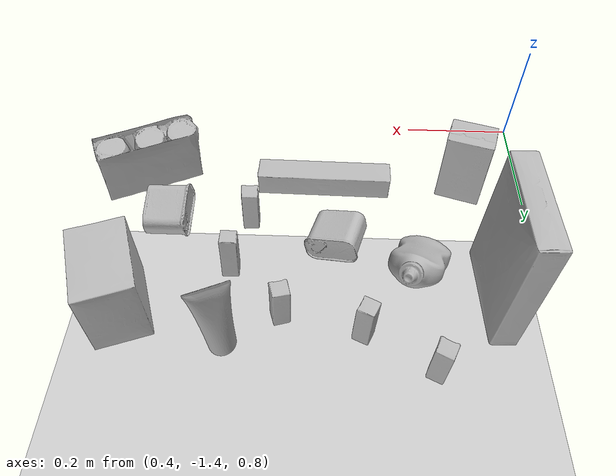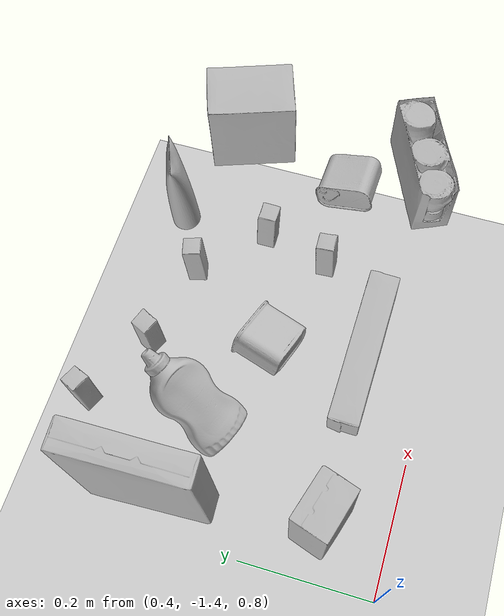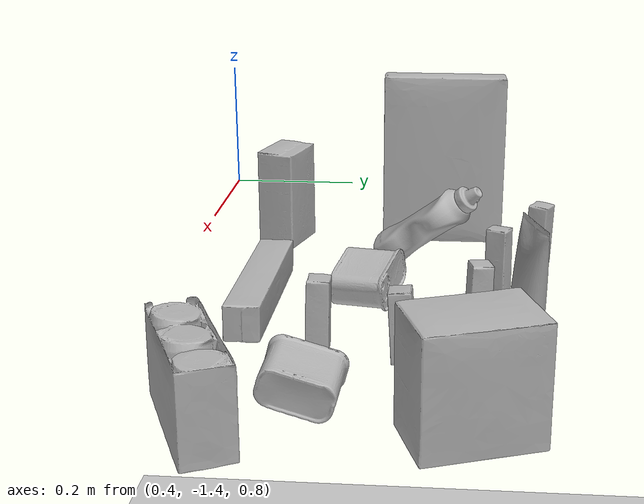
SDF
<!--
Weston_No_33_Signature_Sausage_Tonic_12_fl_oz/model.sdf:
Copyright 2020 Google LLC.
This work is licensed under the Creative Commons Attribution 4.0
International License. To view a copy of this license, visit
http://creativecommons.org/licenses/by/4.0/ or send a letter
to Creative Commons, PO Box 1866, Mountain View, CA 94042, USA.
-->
<sdf version="1.10">
 <world name="empty">
  <physics name="1ms" type="ignored">
   <max_step_size>0.001</max_step_size>
   <real_time_factor>1</real_time_factor>
   <real_time_update_rate>1000</real_time_update_rate>
  </physics>
  <plugin name="gz::sim::systems::Physics" filename="gz-sim-physics-system"/>
  <plugin name="gz::sim::systems::UserCommands" filename="gz-sim-user-commands-system"/>
  <plugin name="gz::sim::systems::SceneBroadcaster" filename="gz-sim-scene-broadcaster-system"/>
  <plugin name="gz::sim::systems::Contact" filename="gz-sim-contact-system"/>
  <gravity>0 0 -9.8000000000000007</gravity>
  <magnetic_field>5.5644999999999998e-06 2.2875799999999999e-05 -4.2388400000000002e-05</magnetic_field>
  <atmosphere type="adiabatic"/>
  <scene>
   <ambient>0.400000006 0.400000006 0.400000006 1</ambient>
   <background>0.699999988 0.699999988 0.699999988 1</background>
   <shadows>true</shadows>
  </scene>
  <model name="ground_plane">
   <static>true</static>
   <link name="link">
    <collision name="collision">
     <geometry><plane><normal>0 0 1</normal><size>100 100</size></plane></geometry>
    </collision>
    <visual name="visual">
     <geometry><plane><normal>0 0 1</normal><size>100 100</size></plane></geometry>
     <material>
      <ambient>0.800000012 0.800000012 0.800000012 1</ambient>
      <diffuse>0.800000012 0.800000012 0.800000012 1</diffuse>
      <specular>0.800000012 0.800000012 0.800000012 1</specular>
     </material>
    </visual>
    <inertial>
     <mass>1</mass>
     <inertia><ixx>1</ixx><ixy>0</ixy><ixz>0</ixz><iyy>1</iyy><iyz>0</iyz><izz>1</izz></inertia>
    </inertial>
   </link>
  </model>
  <include>
   <uri>file:///home/surabhi/UR10e-3D-Vision-Guided-Bin-Picking/src/gazebo/models/Weston_No_33_Signature_Sausage_Tonic_12_fl_oz</uri>
   <name>weston_no_33</name>
   <pose>0.94896199999999997 -1.0813699999999999 0.72610200000000003 0.017293599999999937 -0.029874100000000046 0.0052138000000000097</pose>
  </include>
  <include>
   <uri>file:///home/surabhi/UR10e-3D-Vision-Guided-Bin-Picking/src/gazebo/models/PottedMeatCan</uri>
   <name>potted_meat_can_0</name>
   <pose>1.1201310753535916 -1.168747876870887 0.72767496889799665 -1.5182258674087061 0.21762945503082148 1.5449137025588042</pose>
  </include>
  <include>
   <uri>file:///home/surabhi/UR10e-3D-Vision-Guided-Bin-Picking/src/gazebo/models/PottedMeatCan</uri>
   <name>potted_meat_can</name>
   <pose>0.76589207381968216 -1.1861331982128076 0.72767396836982934 -1.5182257809923481 0.21762944651112795 -0.27906504398211729</pose>
  </include>
  <include>
   <uri>file:///home/surabhi/UR10e-3D-Vision-Guided-Bin-Picking/src/gazebo/models/MustardBottle</uri>
   <name>mustard_bottle</name>
   <pose>0.59299199999999996 -1.1065700000000001 0.72670100000000004 -0.85999899999999962 0.34638799999999997 -0.10850700000000002</pose>
  </include>
  <include>
   <uri>file:///home/surabhi/UR10e-3D-Vision-Guided-Bin-Picking/src/gazebo/models/YumYum_D3_Liquid</uri>
   <name>yumyum_d3_liquid</name>
   <pose>0.84850000000000003 -0.981989 0.72674000000000005 -0.0063153100000000123 -0.0046516300000000029 -2.8784200000000006</pose>
  </include>
  <include>
   <uri>file:///home/surabhi/UR10e-3D-Vision-Guided-Bin-Picking/src/gazebo/models/Wilton_PreCut_Parchment_Sheets_10_x_15_24_sheets</uri>
   <name>wilton_precut_parchment</name>
   <pose>0.77714799999999995 -1.29634 0.72487999999999997 -0.0027906800000000015 0.014548300000000007 3.124359999999998</pose>
  </include>
  <include>
   <uri>file:///home/surabhi/UR10e-3D-Vision-Guided-Bin-Picking/src/gazebo/models/Wilton_Pearlized_Sugar_Sprinkles_525_oz_Gold</uri>
   <name>wilton_pearlized_sugar</name>
   <pose>0.91903950639874943 -1.1932496273494786 0.72679615339633474 -0.0067553540261396892 0.0049257063473669566 -3.0988371276098783</pose>
  </include>
  <include>
   <uri>file:///home/surabhi/UR10e-3D-Vision-Guided-Bin-Picking/src/gazebo/models/Whey_Protein_Vanilla_12_Packets</uri>
   <name>whey_protein_vanilla</name>
   <pose>1.14008 -0.99378500000000003 0.72656699999999996 -0.0028023400000000026 -0.0055167400000000009 -2.7937199999999991</pose>
  </include>
  <include>
   <uri>file:///home/surabhi/UR10e-3D-Vision-Guided-Bin-Picking/src/gazebo/models/Nescafe_Momento_Mocha_Specialty_Coffee_Mix_8_ct</uri>
   <name>nescafe_momento</name>
   <pose>0.49492799999999998 -1.3006800000000001 0.72657000000000005 -0.0030983199999999999 -0.0070154199999999927 -0.30740099999999942</pose>
  </include>
  <include>
   <uri>file:///home/surabhi/UR10e-3D-Vision-Guided-Bin-Picking/src/gazebo/models/Orbit_Bubblemint_Mini_Bottle_6_ct</uri>
   <name>orbit_bubblemint</name>
   <pose>1.13558 -1.31409 0.72648000000000001 0.0014273100000000011 -0.0037963700000000098 0.42945600000000056</pose>
  </include>
  <include>
   <uri>file:///home/surabhi/UR10e-3D-Vision-Guided-Bin-Picking/src/gazebo/models/Nestle_Nesquik_Chocolate_Powder_Flavored_Milk_Additive_109_Oz_Canister</uri>
   <name>nestle_nesquick</name>
   <pose>0.70176400000000005 -0.95255000000000001 0.72663299999999997 -0.0043575299999999992 -0.00077532400000000204 -2.0057800000000015</pose>
  </include>
  <include>
   <uri>file:///home/surabhi/UR10e-3D-Vision-Guided-Bin-Picking/src/gazebo/models/Vans_Cereal_Honey_Nut_Crunch_11_oz_box</uri>
   <name>vans_cereal</name>
   <pose>0.465364 -1.0387500000000001 0.72626900000000005 -0.0040480299999999985 -0.0082300600000000043 1.5956700000000006</pose>
  </include>
  <include>
   <uri>file:///home/surabhi/UR10e-3D-Vision-Guided-Bin-Picking/src/gazebo/models/Marc_Anthony_True_Professional_Strictly_Curls_Curl_Defining_Lotion</uri>
   <name>marc_anthony_strictly_curls</name>
   <pose>0.94857698678970315 -0.92697900533676159 0.72631698846817017 0.0067585963811790835 -0.040692320984543284 -2.0415162843934889</pose>
  </include>
  <include>
   <uri>file:///home/surabhi/UR10e-3D-Vision-Guided-Bin-Picking/src/gazebo/models/Twinlab_Nitric_Fuel</uri>
   <name>twinlab_nitric_fuel</name>
   <pose>0.58199501037597656 -0.88497799634933483 0.72663199901580811 0.00016399200387829003 0.0082861103929021702 2.6939387690907721</pose>
  </include>
  <light name="sun" type="directional">
   <pose>0 0 10 0 0 0</pose>
   <intensity>1</intensity>
   <direction>-0.5 0.10000000000000001 -0.90000000000000002</direction>
   <diffuse>0.800000012 0.800000012 0.800000012 1</diffuse>
   <specular>0.200000003 0.200000003 0.200000003 1</specular>
   <attenuation>
    <range>1000</range>
    <linear>0.0099999997764825821</linear>
    <constant>0.89999997615814209</constant>
    <quadratic>0.0010000000474974513</quadratic>
   </attenuation>
   <spot><inner_angle>0</inner_angle><outer_angle>0</outer_angle><falloff>0</falloff></spot>
  </light>
 </world>
</sdf>

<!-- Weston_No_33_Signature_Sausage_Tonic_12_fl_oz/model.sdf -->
<sdf version="1.6">

  <model name='Weston_No_33_Signature_Sausage_Tonic_12_fl_oz'>
      <link name='link_0'>
        <visual name='visual'>
          <geometry>
            <mesh>
              <uri>meshes/model.obj</uri>
            </mesh>
          </geometry>
        </visual>
        <collision name='collision_0'>
          <geometry>
            <mesh>
              <uri>meshes/model.obj</uri>
            </mesh>
          </geometry>
        </collision>
        <pose>0 0 0 0 0 0</pose>
        <inertial>
          <pose>0 0 0 0 0 0</pose>
          <mass>1</mass>
          <inertia>
            <ixx>1</ixx>
            <ixy>0</ixy>
            <ixz>0</ixz>
            <iyy>1</iyy>
            <iyz>0</iyz>
            <izz>1</izz>
          </inertia>
        </inertial>
        <enable_wind>false</enable_wind>
      </link>
      <static>false</static>
      <self_collide>false</self_collide>
    </model>

</sdf>

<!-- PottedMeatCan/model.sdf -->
<!--
This SDF file was automatically generated using a template modified
and authored by Adwait Naik. The moment of interia is not supposed to be changed.
-->
<sdf version="1.7">
    <model name="potted_meat_can">
      <pose>1.0 2.0 2.0 0 0 0</pose>
      <link name="link">
        <inertial>
          <inertia>
           <ixx>4.287366513749583e-07</ixx>
           <ixy>-2.020309373055796e-23</ixy>
           <ixz>-4.823406226388371e-24</ixz>
           <iyy>3.228086963634995e-07</iyy>
           <iyz>-5.302497140952807e-25</iyz>
           <izz>2.4925393166117206e-07</izz>
          </inertia>
          <mass>0.0003541315255998319</mass>
        </inertial>
        <collision name="collision">
          <geometry>
          	<mesh>
             <uri>textured.dae</uri>
            </mesh>
          </geometry>
        </collision>

        <visual name="visual">
          <geometry>
          	<mesh>
            <uri>textured.dae</uri>
	        </mesh>
          </geometry>
        </visual>
      </link>
    </model>
</sdf>

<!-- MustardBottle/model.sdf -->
<sdf version="1.7">
<!--
This SDF file was automatically generated using a template modified
and authored by Adwait Naik. The moment of interia is not supposed to be changed.
-->
    <model name="mustard_bottle">
      <pose>1.0 2.0 3.0 -1.0 0 0</pose>
      <link name="link">
        <inertial>
          <inertia>
           <ixx>1.6697164243557222e-06</ixx>
           <ixy>-7.608043365683558e-23</ixy>
           <ixz>-8.85497422500391e-24</ixz>
           <iyy>1.454996005383364e-06</iyy>
           <iyz>5.1836699346339805e-24</iyz>
           <izz>4.2928863786736384e-07</izz>
          </inertia>
          <mass>0.6120391571167176</mass>
        </inertial>
        <collision name="collision">
          <geometry>
          	<mesh>
             <uri>textured.dae</uri>
            </mesh>
          </geometry>
          <surface>
            <friction>
                <bullet>
                 <friction>0.3</friction>
                  <friction2>0.3</friction2>
                  <rolling_friction>0.02</rolling_friction>
                </bullet>
            </friction>
            <contact>
              <bullet>
                <soft_cfm>0.00001</soft_cfm>
                <soft_erp>0.05</soft_erp>
                <kp>1e3</kp>
                <kd>50</kd>
              </bullet>
            </contact>
          </surface>
        </collision>

        <visual name="visual">
          <geometry>
          	<mesh>
            <uri>textured.dae</uri>
	        </mesh>
          </geometry>
        </visual>
      </link>
    </model>
</sdf>

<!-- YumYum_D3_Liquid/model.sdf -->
<sdf version="1.6">
   <model name='YumYum_D3_Liquid'>
      <link name='link_0'>
        <visual name='visual'>
          <geometry>
            <mesh>
              <uri>meshes/model.obj</uri>
            </mesh>
          </geometry>
        </visual>
        <collision name='collision_0'>
          <geometry>
            <mesh>
              <uri>meshes/model.obj</uri>
            </mesh>
          </geometry>
        </collision>
        <pose>0 0 0 0 0 0</pose>
        <inertial>
          <pose>0 0 0 0 0 0</pose>
          <mass>1</mass>
          <inertia>
            <ixx>1</ixx>
            <ixy>0</ixy>
            <ixz>0</ixz>
            <iyy>1</iyy>
            <iyz>0</iyz>
            <izz>1</izz>
          </inertia>
        </inertial>
        <enable_wind>false</enable_wind>
      </link>
      <static>false</static>
      <self_collide>false</self_collide>
    </model>
</sdf>

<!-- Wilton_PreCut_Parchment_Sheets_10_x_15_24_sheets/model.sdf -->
<sdf version="1.6">
   <model name='Wilton_PreCut_Parchment_Sheets_10_x_15_24_sheets'>
      <link name='link_0'>
        <visual name='visual'>
          <geometry>
            <mesh>
              <uri>meshes/model.obj</uri>
            </mesh>
          </geometry>
        </visual>
        <collision name='collision_0'>
          <geometry>
            <mesh>
              <uri>meshes/model.obj</uri>
            </mesh>
          </geometry>
        </collision>
        <pose>0 0 0 0 0 0</pose>
        <inertial>
          <pose>0 0 0 0 0 0</pose>
          <mass>1</mass>
          <inertia>
            <ixx>1</ixx>
            <ixy>0</ixy>
            <ixz>0</ixz>
            <iyy>1</iyy>
            <iyz>0</iyz>
            <izz>1</izz>
          </inertia>
        </inertial>
        <enable_wind>false</enable_wind>
      </link>
      <static>false</static>
      <self_collide>false</self_collide>
    </model>
</sdf>

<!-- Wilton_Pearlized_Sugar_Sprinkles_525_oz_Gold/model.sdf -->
<sdf version="1.6">
  <model name='Wilton_Pearlized_Sugar_Sprinkles_525_oz_Gold'>
      <link name='link_0'>
        <visual name='visual'>
          <geometry>
            <mesh>
              <uri>meshes/model.obj</uri>
            </mesh>
          </geometry>
        </visual>
        <collision name='collision_0'>
          <geometry>
            <mesh>
              <uri>meshes/model.obj</uri>
            </mesh>
          </geometry>
        </collision>
        <pose>0 0 0 0 0 0</pose>
        <inertial>
          <pose>0 0 0 0 0 0</pose>
          <mass>1</mass>
          <inertia>
            <ixx>1</ixx>
            <ixy>0</ixy>
            <ixz>0</ixz>
            <iyy>1</iyy>
            <iyz>0</iyz>
            <izz>1</izz>
          </inertia>
        </inertial>
        <enable_wind>false</enable_wind>
      </link>
      <static>false</static>
      <self_collide>false</self_collide>
    </model>
</sdf>

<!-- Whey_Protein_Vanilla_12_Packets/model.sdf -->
<sdf version="1.6">
  <model name='Whey_Protein_Vanilla_12_Packets'>
      <link name='link_0'>
        <visual name='visual'>
          <geometry>
            <mesh>
              <uri>meshes/model.obj</uri>
            </mesh>
          </geometry>
        </visual>
        <collision name='collision_0'>
          <geometry>
            <mesh>
              <uri>meshes/model.obj</uri>
            </mesh>
          </geometry>
        </collision>
        <pose>0 0 0 0 0 0</pose>
        <inertial>
          <pose>0 0 0 0 0 0</pose>
          <mass>1</mass>
          <inertia>
            <ixx>1</ixx>
            <ixy>0</ixy>
            <ixz>0</ixz>
            <iyy>1</iyy>
            <iyz>0</iyz>
            <izz>1</izz>
          </inertia>
        </inertial>
        <enable_wind>false</enable_wind>
      </link>
      <static>false</static>
      <self_collide>false</self_collide>
    </model>
</sdf>

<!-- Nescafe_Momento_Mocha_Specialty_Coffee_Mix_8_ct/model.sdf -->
<sdf version="1.6">
  <model name='Nescafe_Momento_Mocha_Specialty_Coffee_Mix_8_ct'>
      <link name='link_0'>
        <visual name='visual'>
          <geometry>
            <mesh>
              <uri>meshes/model.obj</uri>
            </mesh>
          </geometry>
        </visual>
        <collision name='collision_0'>
          <geometry>
            <mesh>
              <uri>meshes/model.obj</uri>
            </mesh>
          </geometry>
        </collision>
        <pose>0 0 0 0 0 0</pose>
        <inertial>
          <pose>0 0 0 0 0 0</pose>
          <mass>1</mass>
          <inertia>
            <ixx>1</ixx>
            <ixy>0</ixy>
            <ixz>0</ixz>
            <iyy>1</iyy>
            <iyz>0</iyz>
            <izz>1</izz>
          </inertia>
        </inertial>
        <enable_wind>false</enable_wind>
      </link>
      <static>false</static>
      <self_collide>false</self_collide>
    </model>
</sdf>

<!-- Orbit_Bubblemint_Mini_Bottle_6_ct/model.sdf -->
<sdf version="1.6">
  <model name='Orbit_Bubblemint_Mini_Bottle_6_ct'>
      <link name='link_0'>
        <visual name='visual'>
          <geometry>
            <mesh>
              <uri>meshes/model.obj</uri>
            </mesh>
          </geometry>
        </visual>
        <collision name='collision_0'>
          <geometry>
            <mesh>
              <uri>meshes/model.obj</uri>
            </mesh>
          </geometry>
        </collision>
        <pose>0 0 0 0 0 0</pose>
        <inertial>
          <pose>0 0 0 0 0 0</pose>
          <mass>1</mass>
          <inertia>
            <ixx>1</ixx>
            <ixy>0</ixy>
            <ixz>0</ixz>
            <iyy>1</iyy>
            <iyz>0</iyz>
            <izz>1</izz>
          </inertia>
        </inertial>
        <enable_wind>false</enable_wind>
      </link>
      <static>false</static>
      <self_collide>false</self_collide>
    </model>
</sdf>

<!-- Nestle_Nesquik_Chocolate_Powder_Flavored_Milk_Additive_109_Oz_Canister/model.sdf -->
<sdf version="1.6">
  <model name='Nestle_Nesquik_Chocolate_Powder_Flavored_Milk_Additive_109_Oz_Canister'>
      <link name='link_0'>
        <visual name='visual'>
          <geometry>
            <mesh>
              <uri>meshes/model.obj</uri>
            </mesh>
          </geometry>
        </visual>
        <collision name='collision_0'>
          <geometry>
            <mesh>
              <uri>meshes/model.obj</uri>
            </mesh>
          </geometry>
        </collision>
        <pose>0 0 0 0 0 0</pose>
        <inertial>
          <pose>0 0 0 0 0 0</pose>
          <mass>1</mass>
          <inertia>
            <ixx>1</ixx>
            <ixy>0</ixy>
            <ixz>0</ixz>
            <iyy>1</iyy>
            <iyz>0</iyz>
            <izz>1</izz>
          </inertia>
        </inertial>
        <enable_wind>false</enable_wind>
      </link>
      <static>false</static>
      <self_collide>false</self_collide>
    </model>
</sdf>

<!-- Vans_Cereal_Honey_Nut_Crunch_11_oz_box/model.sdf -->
<sdf version="1.6">
  <model name='Vans_Cereal_Honey_Nut_Crunch_11_oz_box'>
      <link name='link_0'>
        <visual name='visual'>
          <geometry>
            <mesh>
              <uri>meshes/model.obj</uri>
            </mesh>
          </geometry>
        </visual>
        <collision name='collision_0'>
          <geometry>
            <mesh>
              <uri>meshes/model.obj</uri>
            </mesh>
          </geometry>
        </collision>
        <pose>0 0 0 0 0 0</pose>
        <inertial>
          <pose>0 0 0 0 0 0</pose>
          <mass>1</mass>
          <inertia>
            <ixx>1</ixx>
            <ixy>0</ixy>
            <ixz>0</ixz>
            <iyy>1</iyy>
            <iyz>0</iyz>
            <izz>1</izz>
          </inertia>
        </inertial>
        <enable_wind>false</enable_wind>
      </link>
      <static>false</static>
      <self_collide>false</self_collide>
    </model>
</sdf>

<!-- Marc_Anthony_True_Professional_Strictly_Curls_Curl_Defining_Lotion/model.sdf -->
<sdf version="1.6">
   <model name='Marc_Anthony_True_Professional_Strictly_Curls_Curl_Defining_Lotion'>
      <link name='link_0'>
        <visual name='visual'>
          <geometry>
            <mesh>
              <uri>meshes/model.obj</uri>
            </mesh>
          </geometry>
        </visual>
        <collision name='collision_0'>
          <geometry>
            <mesh>
              <uri>meshes/model.obj</uri>
            </mesh>
          </geometry>
        </collision>
        <pose>0 0 0 0 0 0</pose>
        <inertial>
          <pose>0 0 0 0 0 0</pose>
          <mass>1</mass>
          <inertia>
            <ixx>1</ixx>
            <ixy>0</ixy>
            <ixz>0</ixz>
            <iyy>1</iyy>
            <iyz>0</iyz>
            <izz>1</izz>
          </inertia>
        </inertial>
        <enable_wind>false</enable_wind>
      </link>
      <static>false</static>
      <self_collide>false</self_collide>
    </model>
</sdf>

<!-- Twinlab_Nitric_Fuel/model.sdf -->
<sdf version="1.6">
  <model name='Twinlab_Nitric_Fuel'>
      <link name='link_0'>
        <visual name='visual'>
          <geometry>
            <mesh>
              <uri>meshes/model.obj</uri>
            </mesh>
          </geometry>
        </visual>
        <collision name='collision_0'>
          <geometry>
            <mesh>
              <uri>meshes/model.obj</uri>
            </mesh>
          </geometry>
        </collision>
        <pose>0 0 0 0 0 0</pose>
        <inertial>
          <pose>0 0 0 0 0 0</pose>
          <mass>1</mass>
          <inertia>
            <ixx>1</ixx>
            <ixy>0</ixy>
            <ixz>0</ixz>
            <iyy>1</iyy>
            <iyz>0</iyz>
            <izz>1</izz>
          </inertia>
        </inertial>
        <enable_wind>false</enable_wind>
      </link>
      <static>false</static>
      <self_collide>false</self_collide>
    </model>
</sdf>
